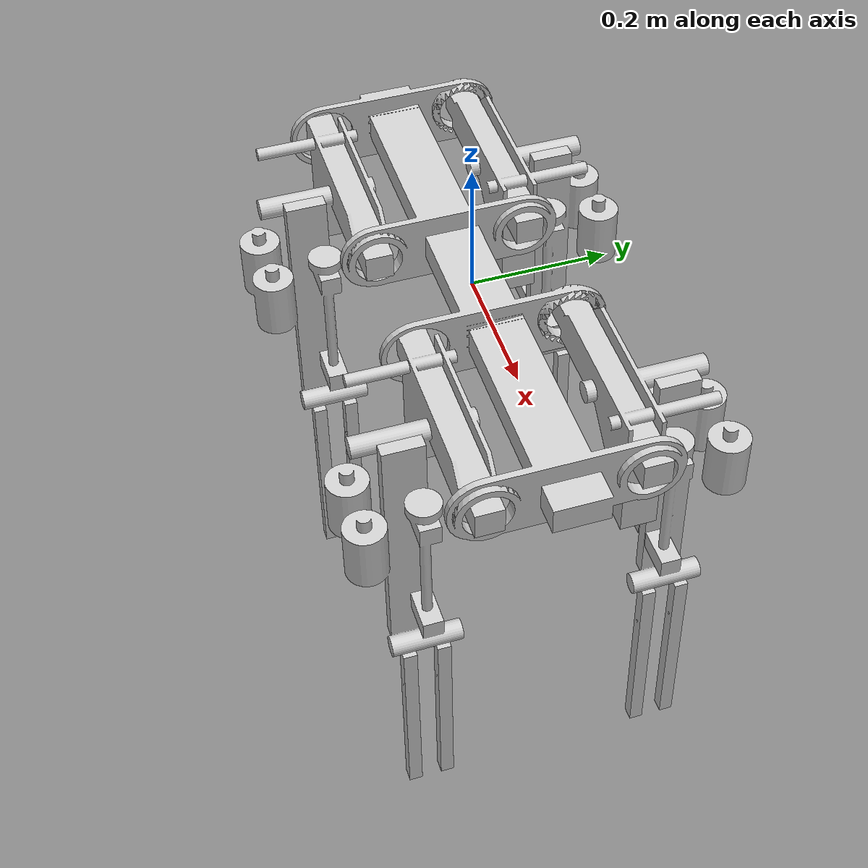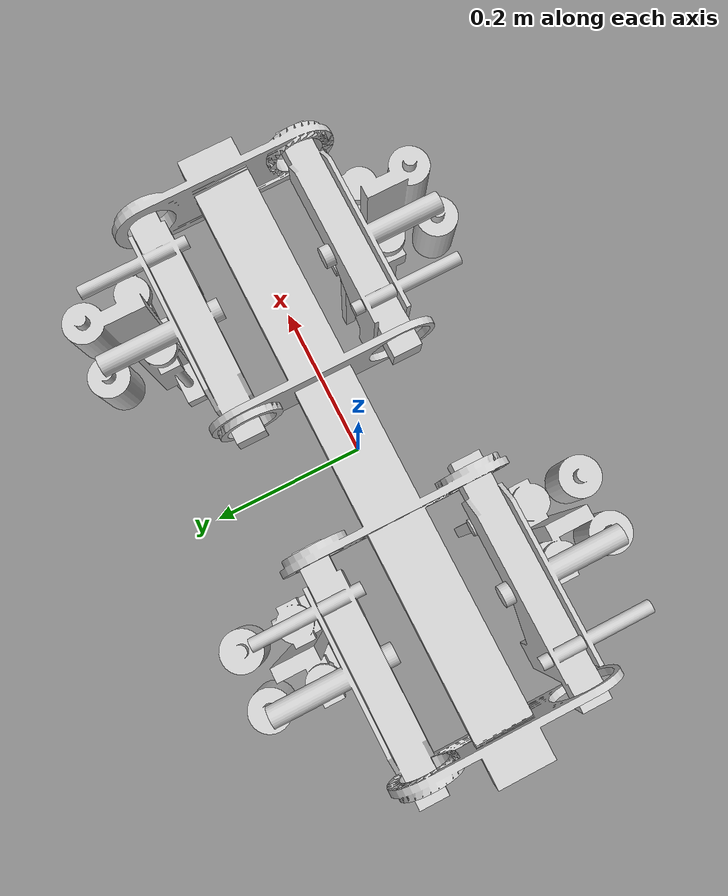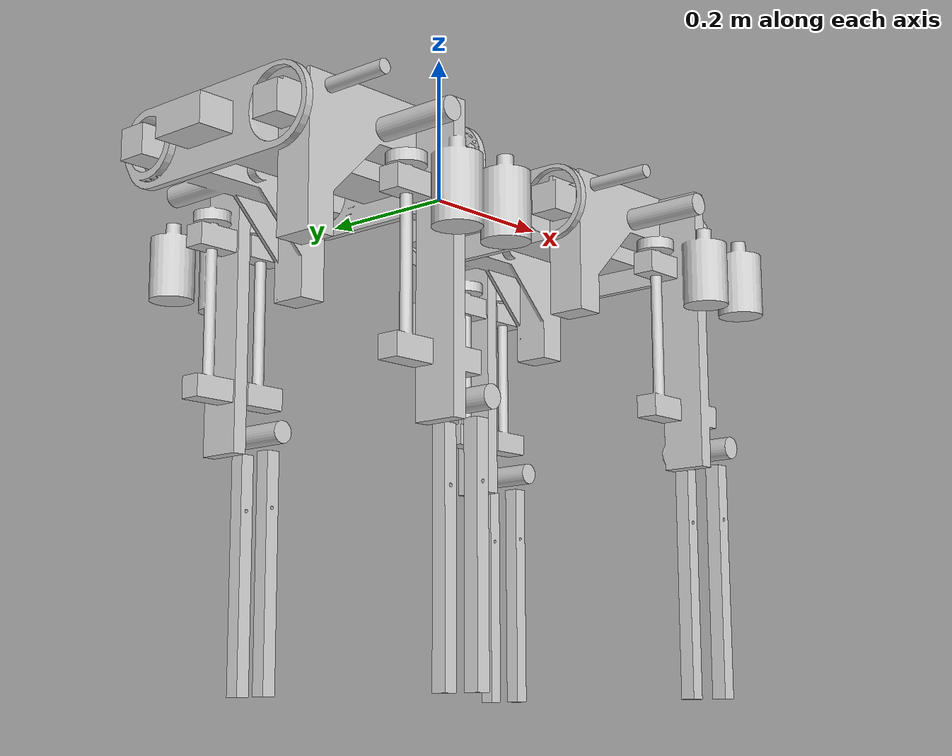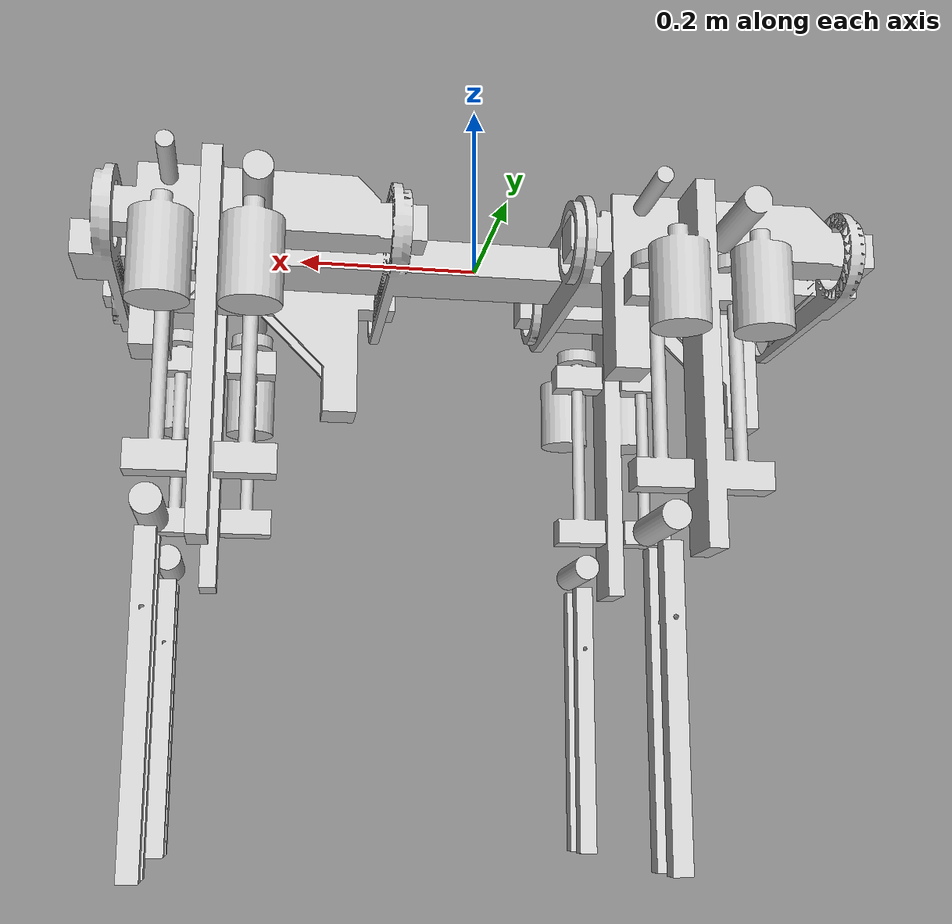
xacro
<?xml version="1.0" ?>
<robot name="opendog" xmlns:xacro="http://www.ros.org/wiki/xacro">

  <!-- openDog Base URDF -->
  <link name="base_link"/>
  <joint name="body_joint" type="fixed">
    <origin rpy="0 0 0" xyz="0 0 0"/>
    <parent link="base_link"/>
    <child link="body"/>
  </joint>
  <link name="body">
    <inertial>
      <origin rpy="0 0 0" xyz="0.1 0.1 0.1"/>
      <mass value="5.0"/>
      <inertia ixx="0.01" ixy="0.01" ixz="0.01" iyy="0.01" iyz="0.01" izz="0.01"/>
    </inertial>
    <visual>
      <origin rpy="0 0 0" xyz="0 0 0"/>
      <geometry>
        <mesh filename="package://opendog_description/meshes/body.dae"/>
      </geometry>
    </visual>
    <collision>
      <origin rpy="0 0 0" xyz="0.0 0.0 0.0"/>
      <geometry>
        <sphere radius="1.0"/>
      </geometry>
    </collision>
  </link>

  <xacro:include filename="$(find opendog_description)/urdf/leg_mechanism.xacro" />
  <xacro:property name="mount_width" value="0.23" scope="local"/>
  <xacro:property name="mount_length" value="0.5" scope="local"/>
  <xacro:leg_mechanism end="front" side="right">
    <origin rpy="0 0 0" xyz="${mount_length/2.0} ${-mount_width/2.0} 0.0"/>
  </xacro:leg_mechanism>
  <xacro:leg_mechanism end="front" side="left">
    <origin rpy="0 0 0" xyz="${mount_length/2.0} ${mount_width/2.0} 0.0"/>
  </xacro:leg_mechanism>
  <xacro:leg_mechanism end="rear" side="right">
    <origin rpy="0 0 0" xyz="${-mount_length/2.0} ${-mount_width/2.0} 0.0"/>
  </xacro:leg_mechanism>
  <xacro:leg_mechanism end="rear" side="left">
    <origin rpy="0 0 0" xyz="${-mount_length/2.0} ${mount_width/2.0} 0.0"/>
  </xacro:leg_mechanism>

</robot>

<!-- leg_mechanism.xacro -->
<robot name="leg_mechanism" xmlns:xacro="http://www.ros.org/wiki/xacro">
  <xacro:macro name="leg_mechanism" params="end side *joint_origin">

   <xacro:property name="reflect" value="1.0" scope="local"/>
   <xacro:if value="${side == 'right'}">
     <xacro:property name="reflect" value="-1.0" scope="local"/>
   </xacro:if>

    <link name="${end}_${side}_leg_mount"/>
    <joint name="${end}_${side}_leg_mount_joint" type="fixed">
      <xacro:insert_block name="joint_origin" />
      <parent link="base_link"/>
      <child link="${end}_${side}_leg_mount"/>
    </joint>
    <joint name="${end}_${side}_hip_mount_joint" type="fixed">
      <origin rpy="0.0 0.0 0.0" xyz="0.0 0.0 0.0"/>
      <parent link="${end}_${side}_leg_mount"/>
      <child link="${end}_${side}_hip"/>
    </joint>
    <link name="${end}_${side}_hip">
      <inertial>
        <origin rpy="0 0 ${pi*(reflect+1)/2}" xyz="0 0 0"/>
        <mass value="5.0"/>
        <inertia ixx="0.01" ixy="0.01" ixz="0.01" iyy="0.01" iyz="0.01" izz="0.01"/>
      </inertial>
      <visual>
        <origin rpy="0 0 ${pi*(reflect+1)/2}" xyz="0 0 0"/>
        <geometry>
          <mesh filename="package://opendog_description/meshes/hip.dae"/>
        </geometry>
      </visual>
      <collision>
        <origin rpy="0 0 ${pi*(reflect+1)/2}" xyz="0 0 0"/>
        <geometry>
          <sphere radius="1.0"/>
        </geometry>
      </collision>
    </link>

    <joint name="${end}_${side}_hip_joint" type="revolute">
      <origin rpy="0.0 0.0 0.0" xyz="0.0 ${reflect*0.075} 0.0"/>
      <parent link="${end}_${side}_hip"/>
      <child link="${end}_${side}_upper_leg"/>
      <axis xyz="0 1 0"/>
      <limit effort="80.0" lower="0.0" upper="1.0" velocity="0.5"/>
      <dynamics damping="10.0" friction="5.0"/>
    </joint>
    <link name="${end}_${side}_upper_leg">
      <inertial>
        <origin rpy="0 0 0" xyz="0 0 0"/>
        <mass value="5.0"/>
        <inertia ixx="0.01" ixy="0.01" ixz="0.01" iyy="0.01" iyz="0.01" izz="0.01"/>
      </inertial>
      <visual>
        <origin rpy="0 0 0" xyz="0 0 0"/>
        <geometry>
	  <mesh filename="package://opendog_description/meshes/${side}_upper_leg.dae"/>
        </geometry>
      </visual>
      <collision>
        <origin rpy="0 0 0" xyz="0 0 0"/>
        <geometry>
          <sphere radius="1.0"/>
        </geometry>
      </collision>
    </link>

    <joint name="${end}_${side}_knee_joint" type="revolute">
      <origin rpy="0.0 0.0 0.0" xyz="0.09 ${reflect*-0.01} -0.32"/>
      <parent link="${end}_${side}_upper_leg"/>
      <child link="${end}_${side}_lower_leg"/>
      <axis xyz="0 1 0"/>
      <limit effort="80.0" lower="-1.5" upper="0.0" velocity="0.5"/>
      <dynamics damping="10.0" friction="5.0"/>
    </joint>
    <link name="${end}_${side}_lower_leg">
      <inertial>
        <origin rpy="0 0 ${pi*(reflect+1)/2}" xyz="0 0 0"/>
        <mass value="5.0"/>
        <inertia ixx="0.01" ixy="0.01" ixz="0.01" iyy="0.01" iyz="0.01" izz="0.01"/>
      </inertial>
      <visual>
        <origin rpy="0 0 ${pi*(reflect+1)/2}" xyz="0 0 0"/>
        <geometry>
          <mesh filename="package://opendog_description/meshes/lower_leg.dae"/>
        </geometry>
      </visual>
      <collision>
        <origin rpy="0 0 ${pi*(reflect+1)/2}" xyz="0 0 0"/>
        <geometry>
          <sphere radius="1.0"/>
        </geometry>
      </collision>
    </link>
    <link name="${end}_${side}_foot"/>
    <joint name="${end}_${side}_lower_leg_joint" type="fixed">
      <origin rpy="0 0 0" xyz="0 0 -0.34"/>
      <parent link="${end}_${side}_lower_leg"/>
      <child link="${end}_${side}_foot"/>
    </joint>

  </xacro:macro>
</robot>
